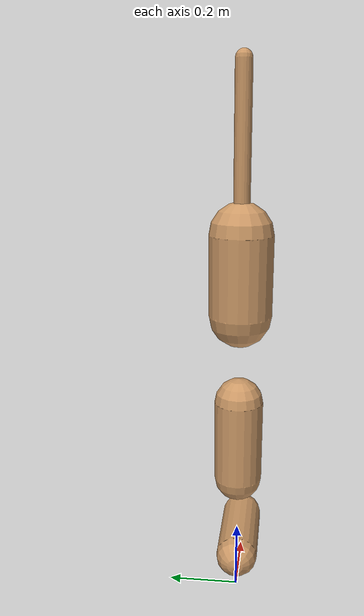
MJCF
<mujoco model="walker2d">
  <compiler angle="degree" coordinate="global" inertiafromgeom="true" />
  <default>
    <joint armature="0.01" damping=".1" limited="true" />
    <geom conaffinity="0" condim="3" contype="1" density="1000" friction="0.8 .1 .1" rgba="0.8 0.6 .4 1" />
  </default>
  <option integrator="RK4" timestep="0.002" />
  <worldbody>

    <body name="torso" pos="0 0 -0.5103541110877989">
      <joint armature="0" axis="1 0 0" damping="0" limited="false" name="ignorex" pos="0 0 0" stiffness="0" type="slide" />
      <joint armature="0" axis="0 0 1" damping="0" limited="false" name="ignorez" pos="0 0 0" ref="1.25" stiffness="0" type="slide" />
      <joint armature="0" axis="0 1 0" damping="0" limited="false" name="ignorey" pos="0 0 0" stiffness="0" type="hinge" />
      <geom fromto="0 0 1.45 0 0 1.05" name="torso_geom" size="0.020857955103282755" type="capsule" />
      <body name="thigh">
        <joint axis="0 -1 0" name="thigh_joint" pos="0 0 1.05" range="-150 0" type="hinge" />
        <geom fromto="0.0 0.0 1.05 0.0 0.0 0.8417466841994837" name="thigh_geom" size="0.0820112356894936" type="capsule" />
        <body name="leg" pos="0.0 0.0 0.24174668419948375">
          <joint axis="0 -1 0" name="leg_joint" pos="0 0 0.6" range="-150 0" type="hinge" />
          <geom fromto="0.0 0.0 0.6 0.0 0.0 0.36860742688831527" name="leg_geom" size="0.06560898855159489" type="capsule" />
          <body name="foot" pos="0.0 0.0 0.2686074268883153">
            <joint axis="0 -1 0" name="foot_joint" pos="0 0 0.1" range="-45 45" type="hinge" />
            <geom fromto="-0.0 0.0 0.1 0.22702364353363663 0.0 0.1" name="foot_geom" size="0.059947459275448554" type="capsule" />
          </body>
        </body>
      </body>

      <body name="thigh_left">
        <joint axis="0 -1 0" name="thigh_left_joint" pos="0 0 1.05" range="-150 0" type="hinge" />
        <geom fromto="0.0 0.0 1.05 0.0 0.0 0.8417466841994837" name="thigh_left_geom" rgba=".7 .3 .6 1" size="0.0820112356894936" type="capsule" />
        <body name="leg_left" pos="0.0 0.0 0.24174668419948375">
          <joint axis="0 -1 0" name="leg_left_joint" pos="0 0 0.6" range="-150 0" type="hinge" />
          <geom fromto="0.0 0.0 0.6 0.0 0.0 0.36860742688831527" name="leg_left_geom" rgba=".7 .3 .6 1" size="0.06560898855159489" type="capsule" />
          <body name="foot_left" pos="0.0 0.0 0.2686074268883153">
            <joint axis="0 -1 0" name="foot_left_joint" pos="0 0 0.1" range="-45 45" type="hinge" />
            <geom fromto="-0.0 0.0 0.1 0.22702364353363663 0.0 0.1" name="foot_left_geom" rgba=".7 .3 .6 1" size="0.059947459275448554" type="capsule" />
          </body>
        </body>
      </body>
    </body>
  </worldbody>
  <actuator>

    <motor ctrllimited="true" ctrlrange="-1.0 1.0" gear="100" joint="thigh_joint" />
    <motor ctrllimited="true" ctrlrange="-1.0 1.0" gear="100" joint="leg_joint" />
    <motor ctrllimited="true" ctrlrange="-1.0 1.0" gear="100" joint="foot_joint" />
    <motor ctrllimited="true" ctrlrange="-1.0 1.0" gear="100" joint="thigh_left_joint" />
    <motor ctrllimited="true" ctrlrange="-1.0 1.0" gear="100" joint="leg_left_joint" />
    <motor ctrllimited="true" ctrlrange="-1.0 1.0" gear="100" joint="foot_left_joint" />

  </actuator>
</mujoco>
